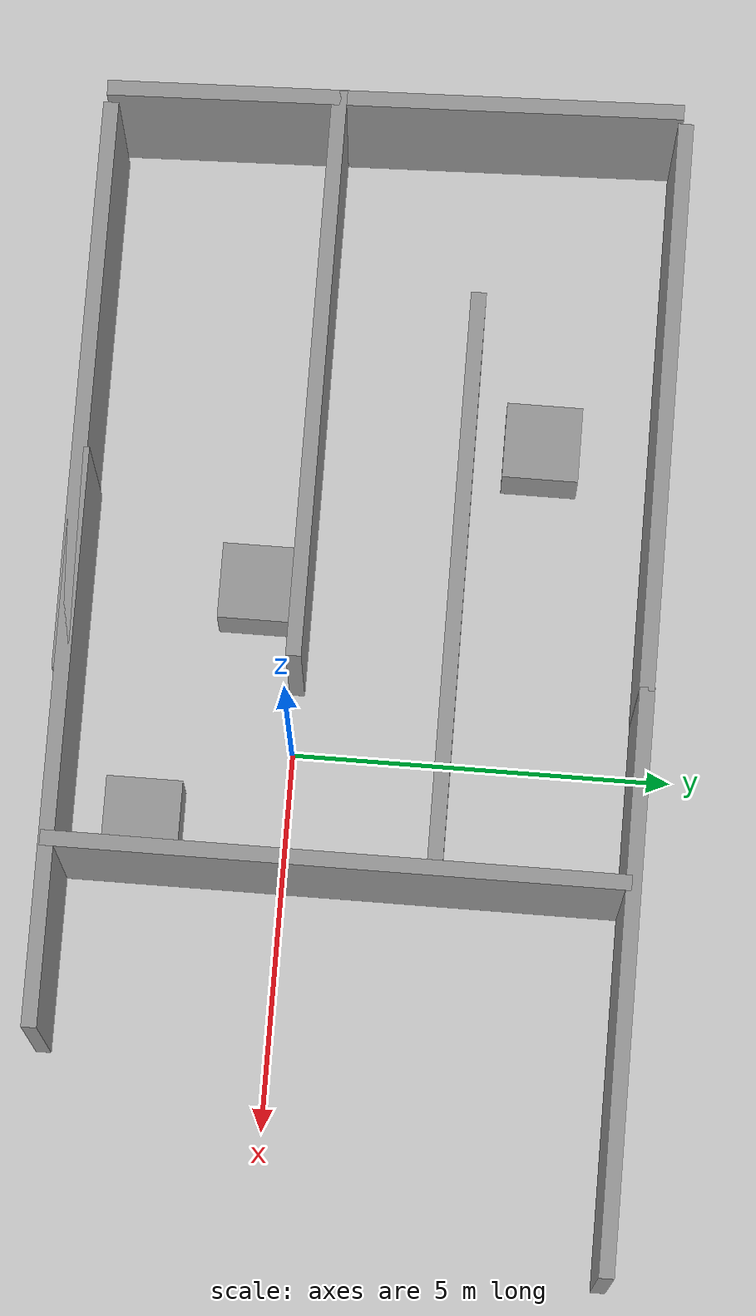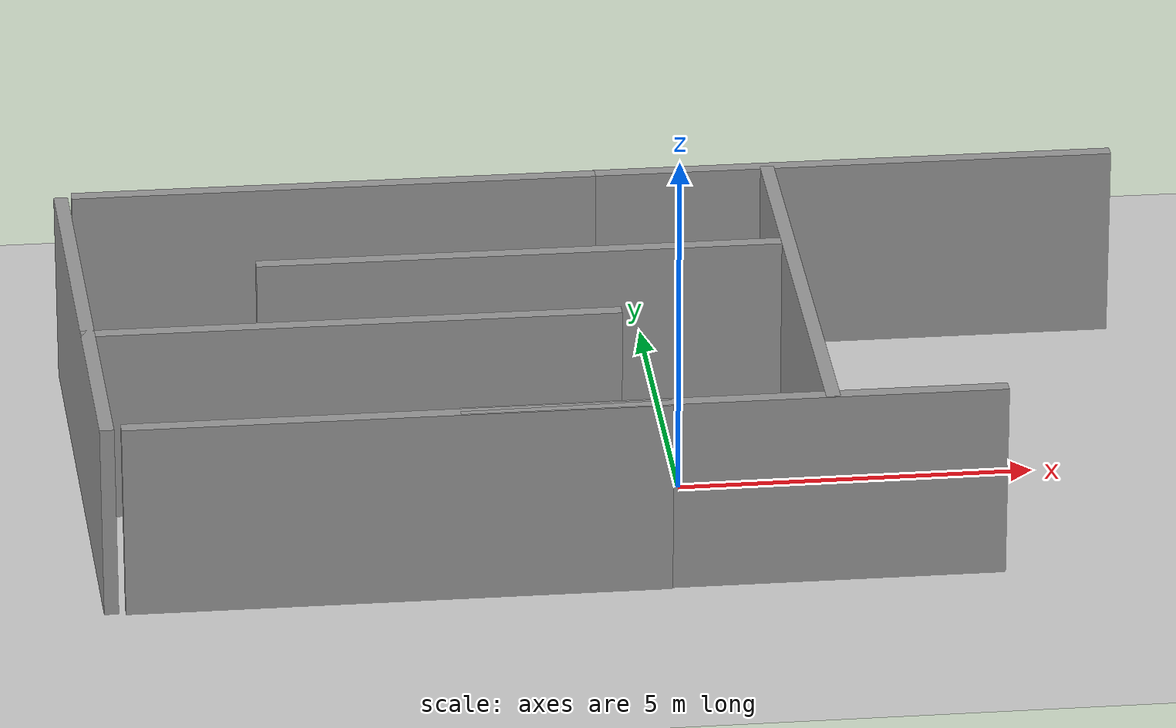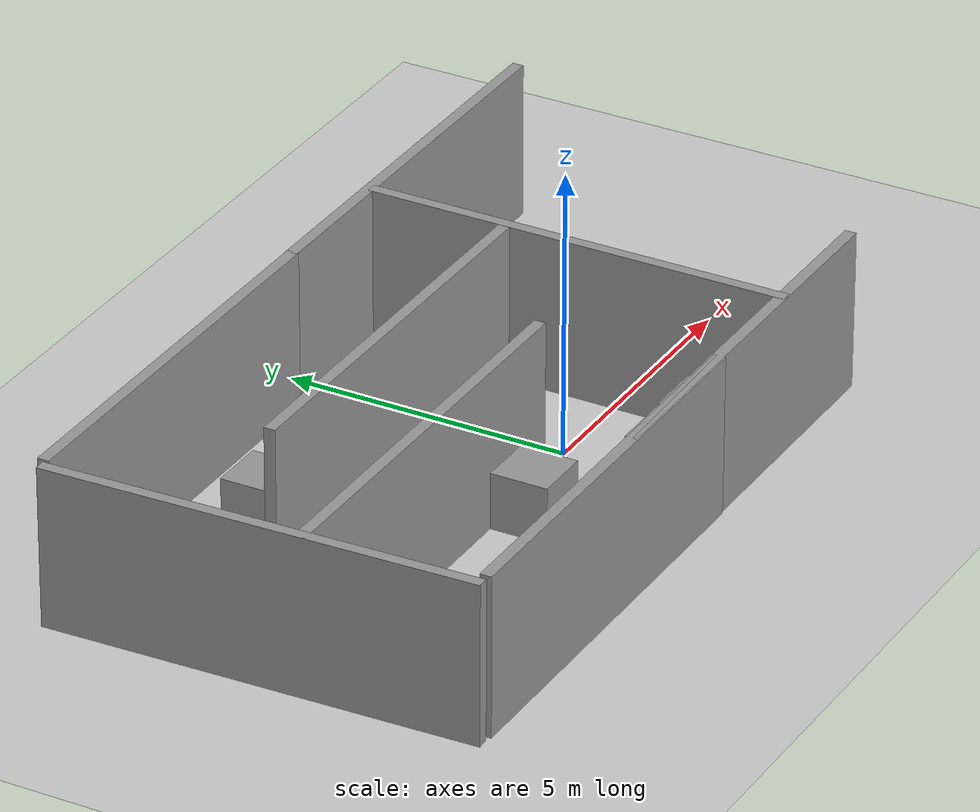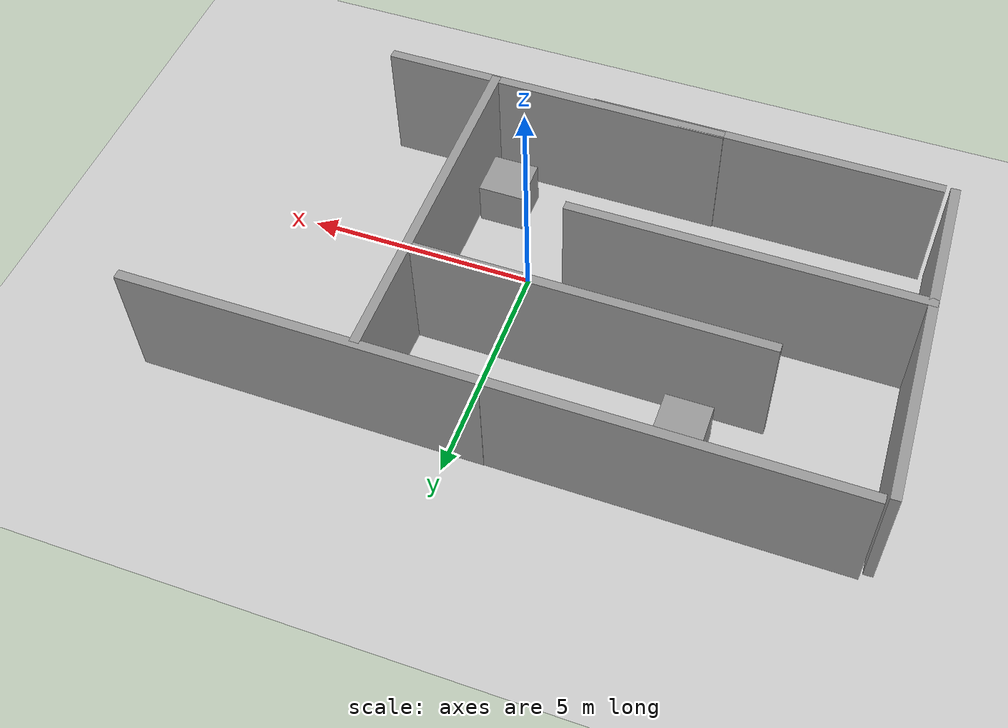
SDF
<sdf version="1.6">
 <world name="default">
  <light name="sun" type="directional">
   <pose>0 0 10 0 -0 0</pose>
   <diffuse>0.8 0.8 0.8 1</diffuse>
   <specular>0.2 0.2 0.2 1</specular>
   <attenuation>
    <range>1000</range>
    <constant>0.9</constant>
    <linear>0.01</linear>
    <quadratic>0.001</quadratic>
   </attenuation>
   <direction>-0.5 0.1 -0.9</direction>
  </light>
  <model name="ground_plane">
   <static>1</static>
   <link name="link">
    <collision name="collision">
     <geometry><plane><normal>0 0 1</normal><size>100 100</size></plane></geometry>
     <surface><friction><ode><mu>100</mu><mu2>50</mu2></ode></friction></surface>
    </collision>
    <visual name="visual">
     <cast_shadows>0</cast_shadows>
     <geometry><plane><normal>0 0 1</normal><size>100 100</size></plane></geometry>
     <material>
      <script><uri>file://media/materials/scripts/gazebo.material</uri><name>Gazebo/Grey</name></script>
     </material>
    </visual>
    <velocity_decay><linear>0</linear><angular>0</angular></velocity_decay>
   </link>
  </model>
  <physics name="default_physics" default="0" type="ode">
   <max_step_size>0.001</max_step_size>
   <real_time_factor>1</real_time_factor>
   <real_time_update_rate>1000</real_time_update_rate>
  </physics>
  <scene><ambient>0.4 0.4 0.4 1</ambient><background>0.7 0.7 0.7 1</background><shadows>1</shadows></scene>
  <spherical_coordinates>
   <surface_model>EARTH_WGS84</surface_model>
   <latitude_deg>0</latitude_deg>
   <longitude_deg>0</longitude_deg>
   <elevation>0</elevation>
   <heading_deg>0</heading_deg>
  </spherical_coordinates>
  <model name="grey_wall">
   <static>1</static>
   <link name="link">
    <pose>0 0 1.4 0 -0 0</pose>
    <collision name="collision"><geometry><box><size>7.5 0.2 2.8</size></box></geometry></collision>
    <visual name="visual">
     <cast_shadows>0</cast_shadows>
     <geometry><box><size>7.5 0.2 2.8</size></box></geometry>
     <material>
      <script>
       <uri>model://grey_wall/materials/scripts</uri>
       <uri>model://grey_wall/materials/textures</uri>
       <name>vrc/grey_wall</name>
      </script>
     </material>
    </visual>
    <velocity_decay><linear>0</linear><angular>0</angular></velocity_decay>
   </link>
   <pose>-4.45669 4.51369 0 0 -0 0</pose>
  </model>
  <model name="grey_wall_0">
   <static>1</static>
   <link name="link">
    <pose>0 0 1.4 0 -0 0</pose>
    <collision name="collision"><geometry><box><size>7.5 0.2 2.8</size></box></geometry></collision>
    <visual name="visual">
     <cast_shadows>0</cast_shadows>
     <geometry><box><size>7.5 0.2 2.8</size></box></geometry>
     <material>
      <script>
       <uri>model://grey_wall/materials/scripts</uri>
       <uri>model://grey_wall/materials/textures</uri>
       <name>vrc/grey_wall</name>
      </script>
     </material>
    </visual>
    <velocity_decay><linear>0</linear><angular>0</angular></velocity_decay>
   </link>
   <pose>-4.17438 -2.94975 0 0 -0 0</pose>
  </model>
  <model name="grey_wall_1">
   <static>1</static>
   <link name="link">
    <pose>0 0 1.4 0 -0 0</pose>
    <collision name="collision"><geometry><box><size>7.5 0.2 2.8</size></box></geometry></collision>
    <visual name="visual">
     <cast_shadows>0</cast_shadows>
     <geometry><box><size>7.5 0.2 2.8</size></box></geometry>
     <material>
      <script>
       <uri>model://grey_wall/materials/scripts</uri>
       <uri>model://grey_wall/materials/textures</uri>
       <name>vrc/grey_wall</name>
      </script>
     </material>
    </visual>
    <velocity_decay><linear>0</linear><angular>0</angular></velocity_decay>
   </link>
   <pose>-8.24091 0.730795 0 0 0 -1.53854</pose>
  </model>
  <model name="grey_wall_2">
   <static>1</static>
   <link name="link">
    <pose>0 0 1.4 0 -0 0</pose>
    <collision name="collision"><geometry><box><size>7.5 0.2 2.8</size></box></geometry></collision>
    <visual name="visual">
     <cast_shadows>0</cast_shadows>
     <geometry><box><size>7.5 0.2 2.8</size></box></geometry>
     <material>
      <script>
       <uri>model://grey_wall/materials/scripts</uri>
       <uri>model://grey_wall/materials/textures</uri>
       <name>vrc/grey_wall</name>
      </script>
     </material>
    </visual>
    <velocity_decay><linear>0</linear><angular>0</angular></velocity_decay>
   </link>
   <pose>-4.55904 0 0 0 -0 0</pose>
  </model>
  <model name="grey_wall_3">
   <static>1</static>
   <link name="link">
    <pose>0 0 1.4 0 -0 0</pose>
    <collision name="collision"><geometry><box><size>7.5 0.2 2.8</size></box></geometry></collision>
    <visual name="visual">
     <cast_shadows>0</cast_shadows>
     <geometry><box><size>7.5 0.2 2.8</size></box></geometry>
     <material>
      <script>
       <uri>model://grey_wall/materials/scripts</uri>
       <uri>model://grey_wall/materials/textures</uri>
       <name>vrc/grey_wall</name>
      </script>
     </material>
    </visual>
    <velocity_decay><linear>0</linear><angular>0</angular></velocity_decay>
   </link>
   <pose>1.76758 0.74778 0.00212 0 0 -1.57102</pose>
  </model>
  <model name="grey_wall_4">
   <static>1</static>
   <link name="link">
    <pose>0 0 1.4 0 -0 0</pose>
    <collision name="collision"><geometry><box><size>7.5 0.2 2.8</size></box></geometry></collision>
    <visual name="visual">
     <cast_shadows>0</cast_shadows>
     <geometry><box><size>7.5 0.2 2.8</size></box></geometry>
     <material>
      <script>
       <uri>model://grey_wall/materials/scripts</uri>
       <uri>model://grey_wall/materials/textures</uri>
       <name>vrc/grey_wall</name>
      </script>
     </material>
    </visual>
    <velocity_decay><linear>0</linear><angular>0</angular></velocity_decay>
   </link>
   <pose>0.431481 -2.92293 0 0 -0 0</pose>
  </model>
  <model name="grey_wall_5">
   <static>1</static>
   <link name="link">
    <pose>0 0 1.4 0 -0 0</pose>
    <collision name="collision"><geometry><box><size>7.5 0.2 2.8</size></box></geometry></collision>
    <visual name="visual">
     <cast_shadows>0</cast_shadows>
     <geometry><box><size>7.5 0.2 2.8</size></box></geometry>
     <material>
      <script>
       <uri>model://grey_wall/materials/scripts</uri>
       <uri>model://grey_wall/materials/textures</uri>
       <name>vrc/grey_wall</name>
      </script>
     </material>
    </visual>
    <velocity_decay><linear>0</linear><angular>0</angular></velocity_decay>
   </link>
   <pose>-2 2 0 0 -0 0</pose>
  </model>
  <model name="grey_wall_6">
   <static>1</static>
   <link name="link">
    <pose>0 0 1.4 0 -0 0</pose>
    <collision name="collision"><geometry><box><size>7.5 0.2 2.8</size></box></geometry></collision>
    <visual name="visual">
     <cast_shadows>0</cast_shadows>
     <geometry><box><size>7.5 0.2 2.8</size></box></geometry>
     <material>
      <script>
       <uri>model://grey_wall/materials/scripts</uri>
       <uri>model://grey_wall/materials/textures</uri>
       <name>vrc/grey_wall</name>
      </script>
     </material>
    </visual>
    <velocity_decay><linear>0</linear><angular>0</angular></velocity_decay>
   </link>
   <pose>3 4.52028 0 0 -0 0</pose>
  </model>
  <gravity>0 0 -9.8</gravity>
  <magnetic_field>6e-06 2.3e-05 -4.2e-05</magnetic_field>
  <atmosphere type="adiabatic"/>
  <model name="unit_box_0">
   <pose>-2.09114 -0.600005 0.499995 1e-05 -0 0</pose>
   <link name="link">
    <inertial>
     <mass>1</mass>
     <inertia>
      <ixx>0.166667</ixx>
      <ixy>0</ixy>
      <ixz>0</ixz>
      <iyy>0.166667</iyy>
      <iyz>0</iyz>
      <izz>0.166667</izz>
     </inertia>
    </inertial>
    <collision name="collision"><geometry><box><size>1 1 1</size></box></geometry></collision>
    <visual name="visual">
     <geometry><box><size>1 1 1</size></box></geometry>
     <material>
      <script><name>Gazebo/Grey</name><uri>file://media/materials/scripts/gazebo.material</uri></script>
     </material>
    </visual>
   </link>
  </model>
  <model name="unit_box_1">
   <pose>1.11489 -1.85641 0.499995 -1e-05 0 0</pose>
   <link name="link">
    <inertial>
     <mass>1</mass>
     <inertia>
      <ixx>0.166667</ixx>
      <ixy>0</ixy>
      <ixz>0</ixz>
      <iyy>0.166667</iyy>
      <iyz>0</iyz>
      <izz>0.166667</izz>
     </inertia>
    </inertial>
    <collision name="collision"><geometry><box><size>1 1 1</size></box></geometry></collision>
    <visual name="visual">
     <geometry><box><size>1 1 1</size></box></geometry>
     <material>
      <script><name>Gazebo/Grey</name><uri>file://media/materials/scripts/gazebo.material</uri></script>
     </material>
    </visual>
   </link>
  </model>
  <model name="unit_box_2">
   <pose>-4.2611 2.98369 0.5 0 -0 0</pose>
   <link name="link">
    <inertial>
     <mass>1</mass>
     <inertia>
      <ixx>0.166667</ixx>
      <ixy>0</ixy>
      <ixz>0</ixz>
      <iyy>0.166667</iyy>
      <iyz>0</iyz>
      <izz>0.166667</izz>
     </inertia>
    </inertial>
    <collision name="collision"><geometry><box><size>1 1 1</size></box></geometry></collision>
    <visual name="visual">
     <geometry><box><size>1 1 1</size></box></geometry>
     <material>
      <script><name>Gazebo/Grey</name><uri>file://media/materials/scripts/gazebo.material</uri></script>
     </material>
    </visual>
   </link>
  </model>
 </world>
</sdf>
